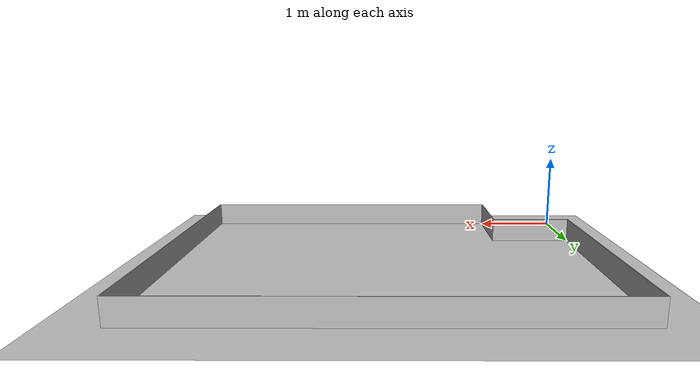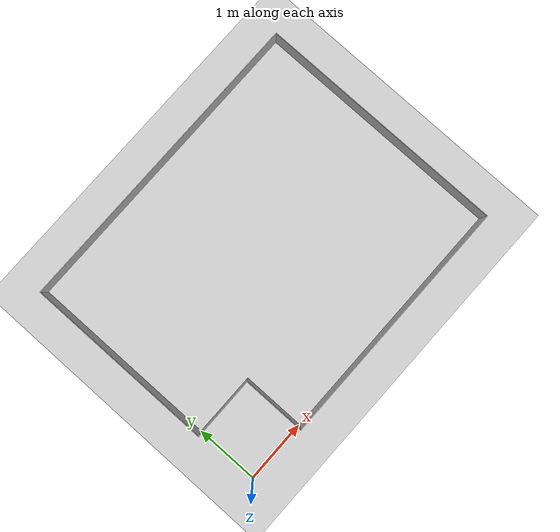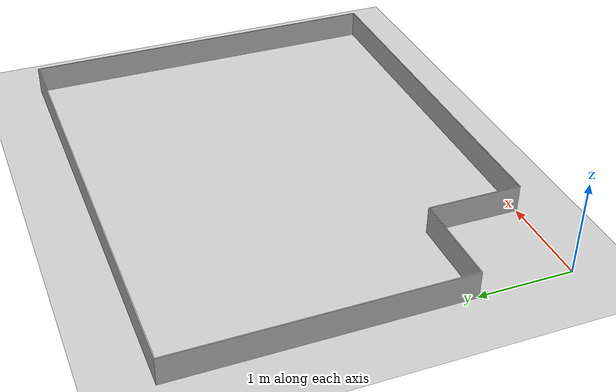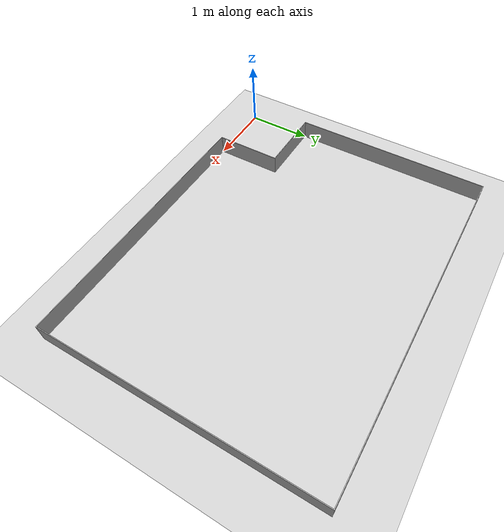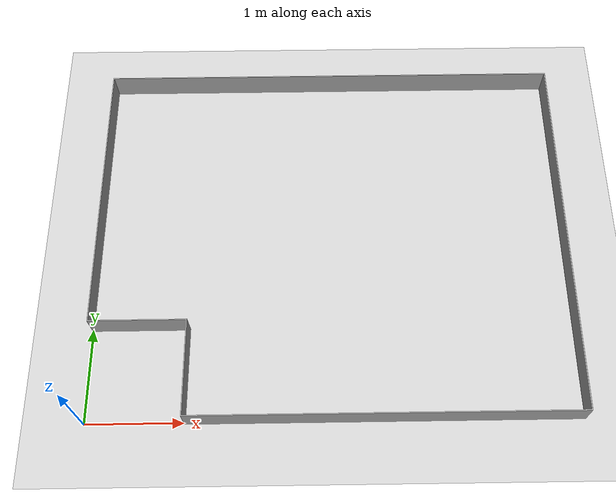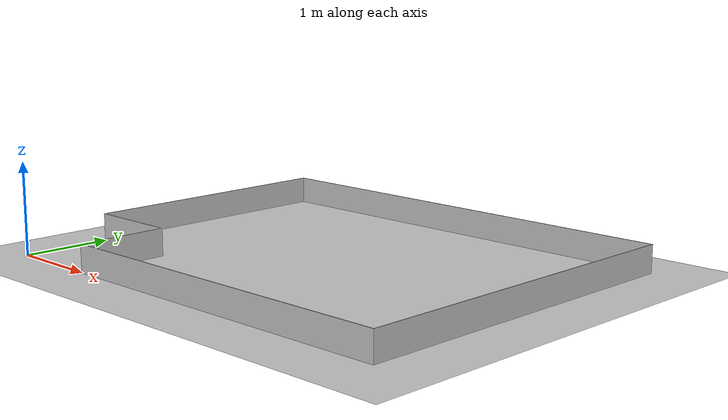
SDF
<?xml version="1.0" ?>
<sdf version="1.5">
  <world name="default">
    <include>
      <uri>model://sun</uri>
    </include>
    <include>
      <uri>model://ground_plane</uri>
    </include>
    <include>
      <uri>model://wall</uri>
      <static>true</static>
      <pose>0 4 0 0 0 -1.57</pose>
    </include>
  </world>
</sdf>

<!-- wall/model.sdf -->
<sdf version="1.4">
<model name="wall">
  <pose>0 0 0.5 0 0 0</pose>
    <link name="link">
      <inertial>
        <mass>1.0</mass>
        <inertia>
          <ixx>0.083</ixx>
          <ixy>0.0</ixy>
          <ixz>0.0</ixz>
          <iyy>0.083</iyy>
          <iyz>0.0</iyz>
          <izz>0.083</izz>
        </inertia>
      </inertial>
      <collision name="collision">
        <geometry>
          <mesh>
            <uri>model://wall/wall_mesh.stl</uri>
          </mesh>
        </geometry>
      </collision>
      <visual name="visual">
        <geometry>
          <mesh>
            <uri>model://wall/wall_mesh.stl</uri>
          </mesh>
        </geometry>
      </visual>
    </link>
  </model>
</sdf>
